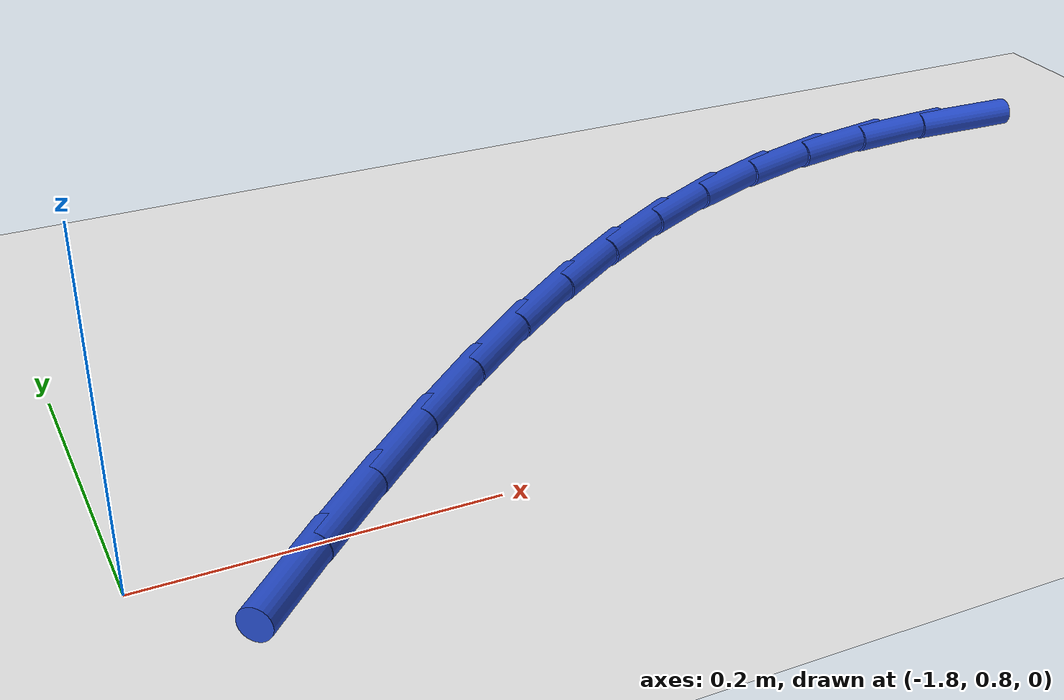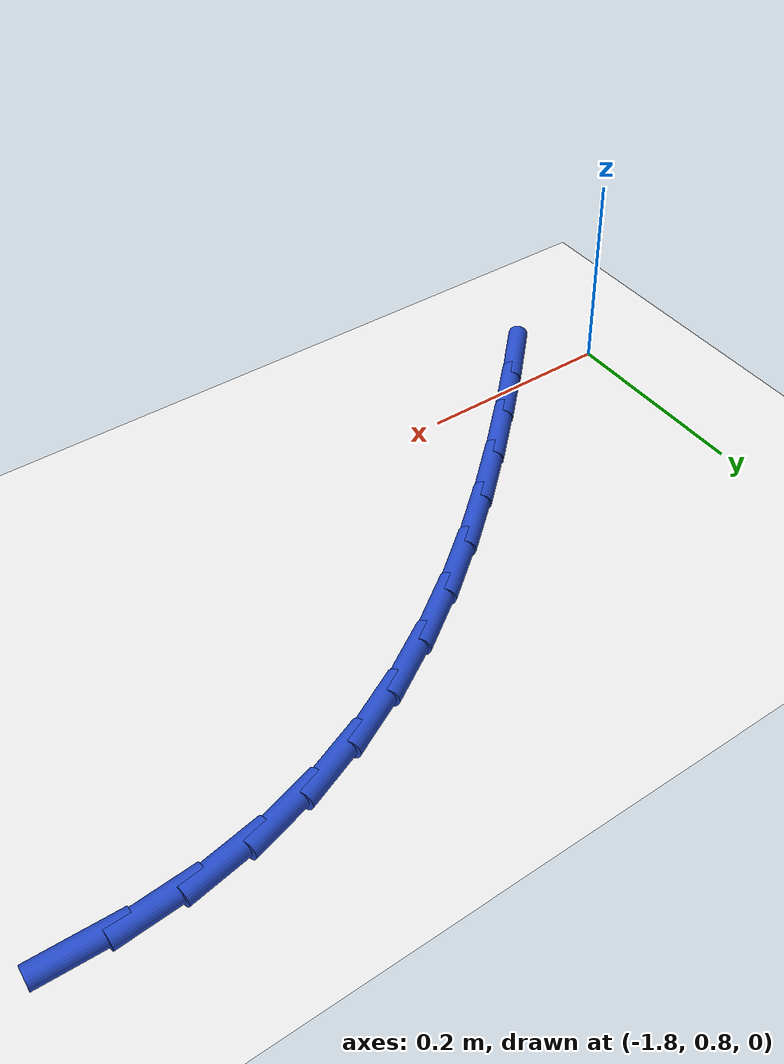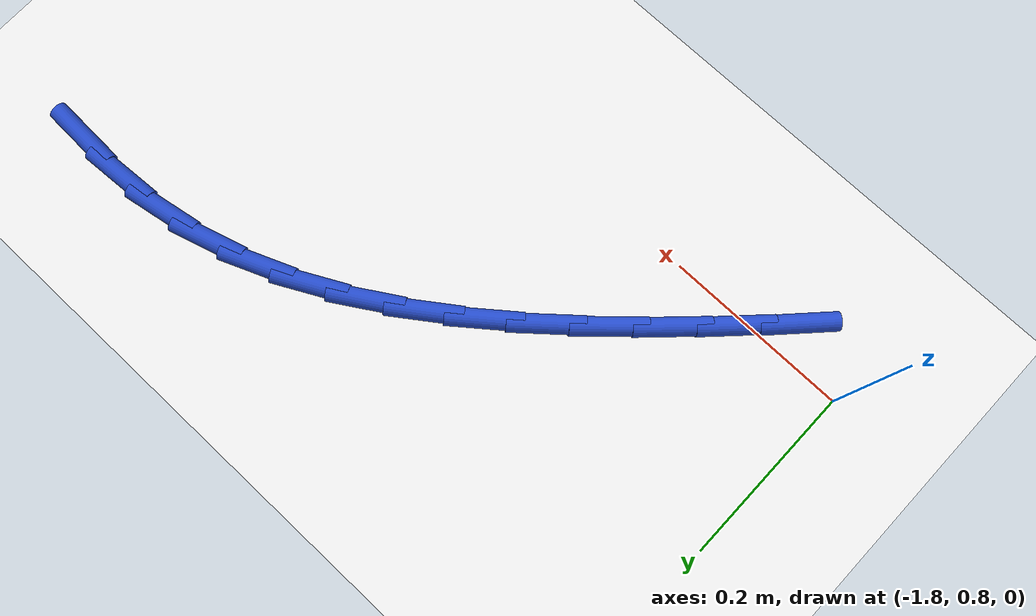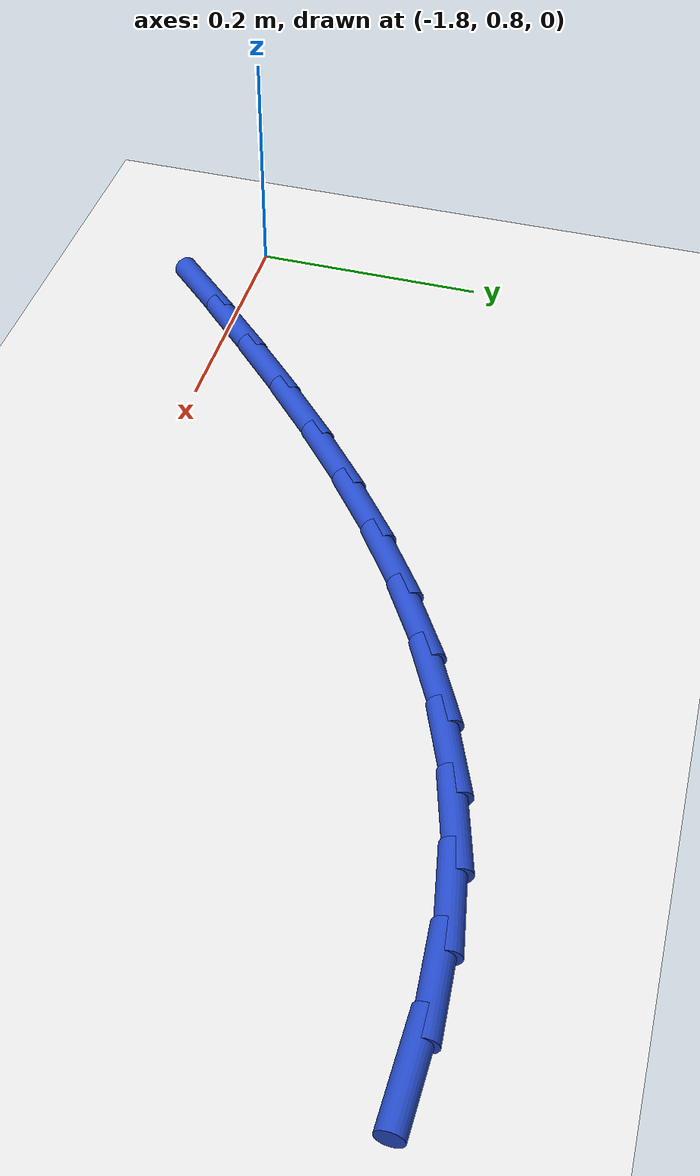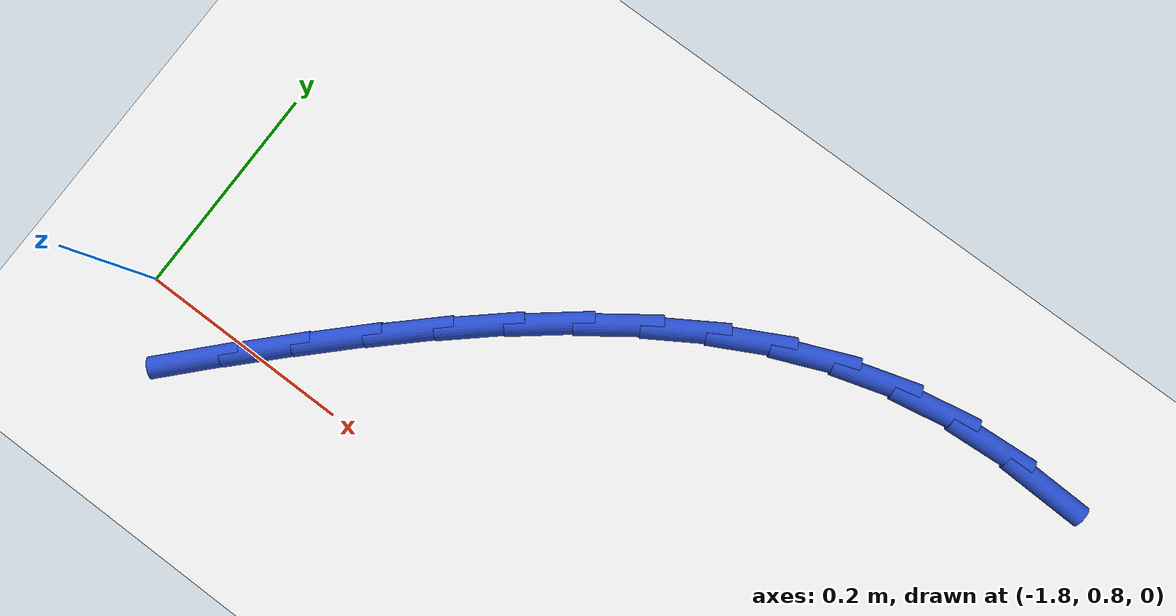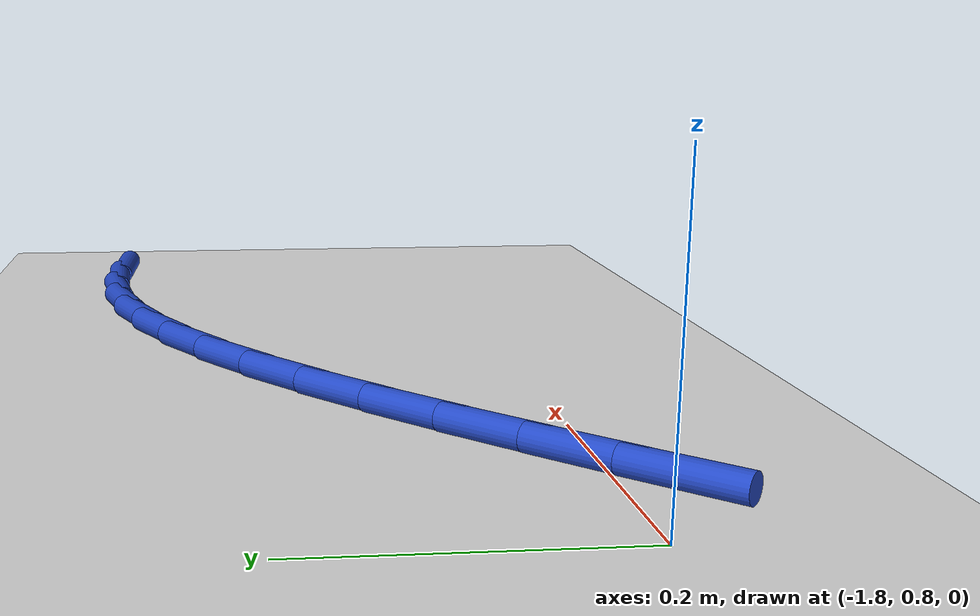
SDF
<sdf version="1.6">
 <world name="default">
  <model name="ground_plane">
   <static>1</static>
   <link name="link">
    <collision name="collision">
     <geometry><plane><normal>0 0 1</normal><size>100 100</size></plane></geometry>
     <surface><friction><ode><mu>100</mu><mu2>50</mu2></ode></friction></surface>
    </collision>
    <visual name="visual">
     <cast_shadows>0</cast_shadows>
     <geometry><plane><normal>0 0 1</normal><size>100 100</size></plane></geometry>
     <material>
      <script><uri>file://media/materials/scripts/gazebo.material</uri><name>Gazebo/WhiteGlow</name></script>
     </material>
    </visual>
   </link>
  </model>
  <model name="line">
   <link name="link_28">
    <pose>-1.0672910811223908 1.1192882722037067 0.01 0 1.57 -0.036688520905847156</pose>
    <collision name="collision">
     <geometry><cylinder><radius>0.01</radius><length>0.08</length></cylinder></geometry>
    </collision>
    <visual name="visual">
     <material>
      <script><name>Gazebo/Blue</name><uri>file://media/materials/scripts/gazebo.material</uri></script>
     </material>
     <geometry><cylinder><radius>0.01</radius><length>0.08</length></cylinder></geometry>
    </visual>
   </link>
   <link name="link_29">
    <pose>-1.1252416009172057 1.1214153455269806 0.01 0 1.57 0.0628002578594423</pose>
    <collision name="collision">
     <geometry><cylinder><radius>0.01</radius><length>0.08</length></cylinder></geometry>
    </collision>
    <visual name="visual">
     <material>
      <script><name>Gazebo/Blue</name><uri>file://media/materials/scripts/gazebo.material</uri></script>
     </material>
     <geometry><cylinder><radius>0.01</radius><length>0.08</length></cylinder></geometry>
    </visual>
   </link>
   <link name="link_30">
    <pose>-1.18219936280427 1.1178336736025816 0.01 0 1.57 0.17460749252101085</pose>
    <collision name="collision">
     <geometry><cylinder><radius>0.01</radius><length>0.08</length></cylinder></geometry>
    </collision>
    <visual name="visual">
     <material>
      <script><name>Gazebo/Blue</name><uri>file://media/materials/scripts/gazebo.material</uri></script>
     </material>
     <geometry><cylinder><radius>0.01</radius><length>0.08</length></cylinder></geometry>
    </visual>
   </link>
   <link name="link_31">
    <pose>-1.2378299523086835 1.108020222466652 0.01 0 1.57 0.2886075396263295</pose>
    <collision name="collision">
     <geometry><cylinder><radius>0.01</radius><length>0.08</length></cylinder></geometry>
    </collision>
    <visual name="visual">
     <material>
      <script><name>Gazebo/Blue</name><uri>file://media/materials/scripts/gazebo.material</uri></script>
     </material>
     <geometry><cylinder><radius>0.01</radius><length>0.08</length></cylinder></geometry>
    </visual>
   </link>
   <link name="link_32">
    <pose>-1.2919749404968084 1.0919447402788414 0.01 0 1.57 0.3913367646521038</pose>
    <collision name="collision">
     <geometry><cylinder><radius>0.01</radius><length>0.08</length></cylinder></geometry>
    </collision>
    <visual name="visual">
     <material>
      <script><name>Gazebo/Blue</name><uri>file://media/materials/scripts/gazebo.material</uri></script>
     </material>
     <geometry><cylinder><radius>0.01</radius><length>0.08</length></cylinder></geometry>
    </visual>
   </link>
   <link name="link_33">
    <pose>-1.3446953067589849 1.070191346692211 0.01 0 1.57 0.48098858215139456</pose>
    <collision name="collision">
     <geometry><cylinder><radius>0.01</radius><length>0.08</length></cylinder></geometry>
    </collision>
    <visual name="visual">
     <material>
      <script><name>Gazebo/Blue</name><uri>file://media/materials/scripts/gazebo.material</uri></script>
     </material>
     <geometry><cylinder><radius>0.01</radius><length>0.08</length></cylinder></geometry>
    </visual>
   </link>
   <link name="link_34">
    <pose>-1.39606580349095 1.0433827275442862 0.01 0 1.57 0.5576160882636424</pose>
    <collision name="collision">
     <geometry><cylinder><radius>0.01</radius><length>0.08</length></cylinder></geometry>
    </collision>
    <visual name="visual">
     <material>
      <script><name>Gazebo/Blue</name><uri>file://media/materials/scripts/gazebo.material</uri></script>
     </material>
     <geometry><cylinder><radius>0.01</radius><length>0.08</length></cylinder></geometry>
    </visual>
   </link>
   <link name="link_35">
    <pose>-1.4461611830884433 1.0121415686725925 0.01 0 1.57 0.621953794747298</pose>
    <collision name="collision">
     <geometry><cylinder><radius>0.01</radius><length>0.08</length></cylinder></geometry>
    </collision>
    <visual name="visual">
     <material>
      <script><name>Gazebo/Blue</name><uri>file://media/materials/scripts/gazebo.material</uri></script>
     </material>
     <geometry><cylinder><radius>0.01</radius><length>0.08</length></cylinder></geometry>
    </visual>
   </link>
   <link name="link_36">
    <pose>-1.4950561979472023 0.9770905559146555 0.01 0 1.57 0.6750301051726696</pose>
    <collision name="collision">
     <geometry><cylinder><radius>0.01</radius><length>0.08</length></cylinder></geometry>
    </collision>
    <visual name="visual">
     <material>
      <script><name>Gazebo/Blue</name><uri>file://media/materials/scripts/gazebo.material</uri></script>
     </material>
     <geometry><cylinder><radius>0.01</radius><length>0.08</length></cylinder></geometry>
    </visual>
   </link>
   <link name="link_37">
    <pose>-1.542825600462965 0.9388523751080001 0.01 0 1.57 0.7179071544065604</pose>
    <collision name="collision">
     <geometry><cylinder><radius>0.01</radius><length>0.08</length></cylinder></geometry>
    </collision>
    <visual name="visual">
     <material>
      <script><name>Gazebo/Blue</name><uri>file://media/materials/scripts/gazebo.material</uri></script>
     </material>
     <geometry><cylinder><radius>0.01</radius><length>0.08</length></cylinder></geometry>
    </visual>
   </link>
   <link name="link_38">
    <pose>-1.58954414303147 0.8980497120901517 0.01 0 1.57 0.7515306700841181</pose>
    <collision name="collision">
     <geometry><cylinder><radius>0.01</radius><length>0.08</length></cylinder></geometry>
    </collision>
    <visual name="visual">
     <material>
      <script><name>Gazebo/Blue</name><uri>file://media/materials/scripts/gazebo.material</uri></script>
     </material>
     <geometry><cylinder><radius>0.01</radius><length>0.08</length></cylinder></geometry>
    </visual>
   </link>
   <link name="link_39">
    <pose>-1.6352865780484547 0.8553052526986358 0.01 0 1.57 0.7766529502472566</pose>
    <collision name="collision">
     <geometry><cylinder><radius>0.01</radius><length>0.08</length></cylinder></geometry>
    </collision>
    <visual name="visual">
     <material>
      <script><name>Gazebo/Blue</name><uri>file://media/materials/scripts/gazebo.material</uri></script>
     </material>
     <geometry><cylinder><radius>0.01</radius><length>0.08</length></cylinder></geometry>
    </visual>
   </link>
   <link name="link_40">
    <pose>-1.6801276579096576 0.8112416827709774 0.01 0 1.57 0.7943549811794797</pose>
    <collision name="collision">
     <geometry><cylinder><radius>0.01</radius><length>0.08</length></cylinder></geometry>
    </collision>
    <visual name="visual">
     <material>
      <script><name>Gazebo/Blue</name><uri>file://media/materials/scripts/gazebo.material</uri></script>
     </material>
     <geometry><cylinder><radius>0.01</radius><length>0.08</length></cylinder></geometry>
    </visual>
   </link>
   <link name="link_41">
    <pose>-1.724122236810627 0.7664518568680595 0.01 0 1.57 0.8124861552440142</pose>
    <collision name="collision">
     <geometry><cylinder><radius>0.01</radius><length>0.08</length></cylinder></geometry>
    </collision>
    <visual name="visual">
     <material>
      <script><name>Gazebo/Blue</name><uri>file://media/materials/scripts/gazebo.material</uri></script>
     </material>
     <geometry><cylinder><radius>0.01</radius><length>0.08</length></cylinder></geometry>
    </visual>
   </link>
  </model>
 </world>
</sdf>
